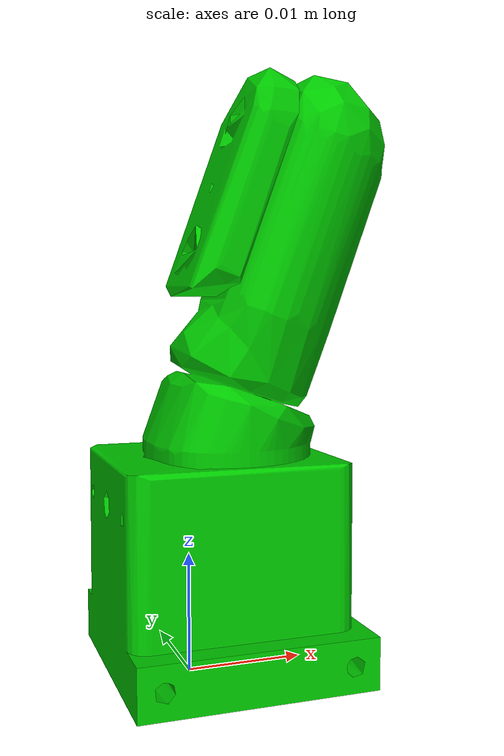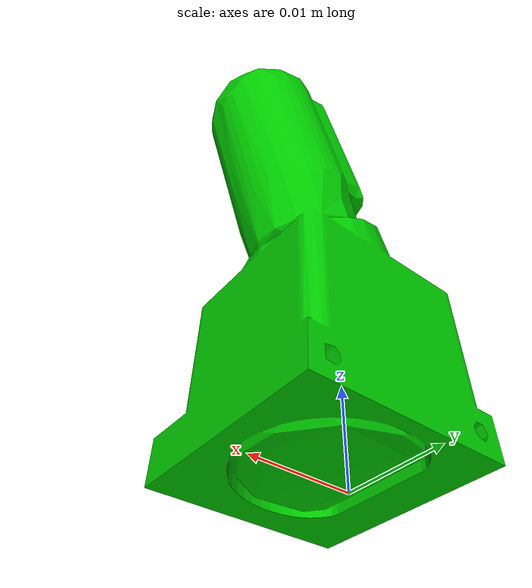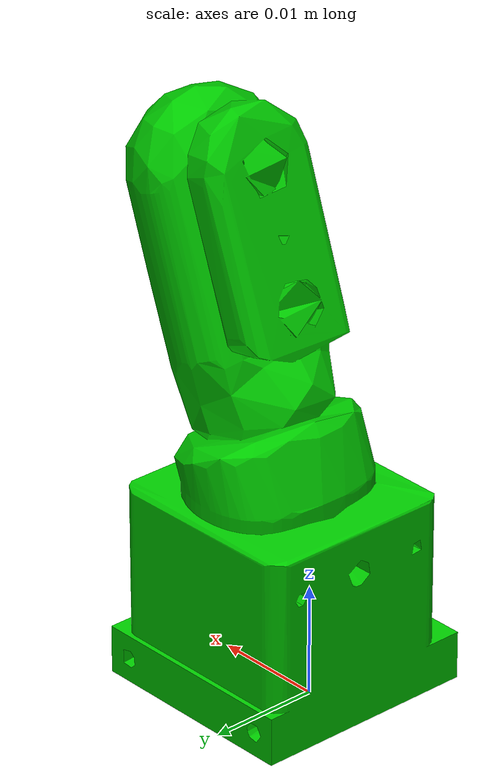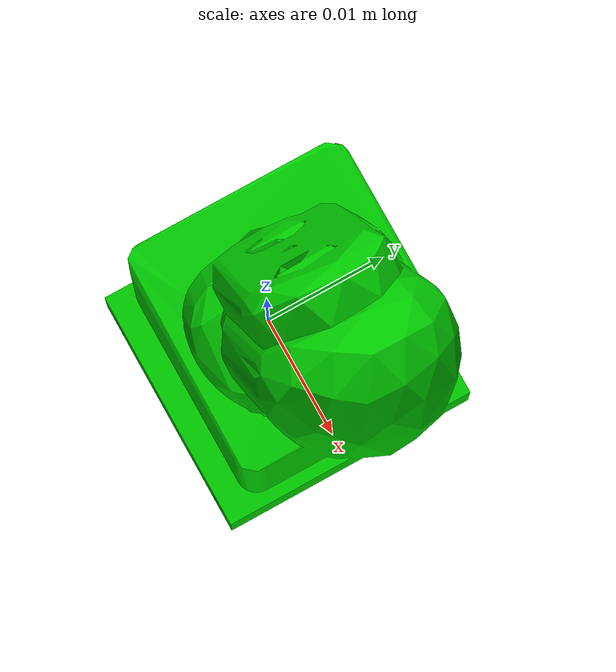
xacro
<robot xmlns:xacro="http://www.ros.org/wiki/xacro" name="fingertip">
<link name="middle_tip_dart">
</link>
<joint name="middle_tip_dart_urdf" type="fixed">
      <origin rpy="0.0 0.0 0.0" xyz="0.011 0.0 0.029"/>
      <parent link="middle_tip_dart"/>
      <child link="middle_tip"/>
    </joint>

<link name="middle_tip">
      <visual>
	<!--origin rpy="0.0 1.57 1.57" xyz="-0.015 -0.0  -0.04" /-->
      <origin rpy="0.0 1.57 1.57" xyz="-0.00277 0.0  -0.00545" />

	<!--origin rpy="0.1 0 1.57" xyz="0.0102 -0.01  -0.055" /-->
        <geometry>
            <mesh filename="package://ll4ma_robots_description/meshes/biotac/biotac_sensor.stl" />
        </geometry>
	        <material name="Green">
            <color rgba="0.0 0.8 .0 1" />
        </material>
    </visual>
    <collision>
      <geometry>
        <box size="0.01 0.01 0.025" />
      </geometry>
      <origin rpy="0 0.3 0" xyz="-0.0025 0 -0.009" />
    </collision>
    <inertial>
        <mass value="0.021" />
        <origin xyz="0 0 0" rpy="0 0 0" />
        <inertia ixx="9.68e-07" ixy="0" ixz="0" iyy="9.68e-07" iyz="0" izz="9.68e-07" />
    </inertial>
    </link>

    <link name="middle_biotac_origin"/>
    <joint name="middle_tip_bt" type="fixed">
      <origin rpy="${0.0 * pi} ${-0.38875 * pi} ${0.0 * pi}" xyz="0.0005 0.00155 0.0155"/>
      <parent link="middle_tip"/>
      <child link="middle_biotac_origin"/>
    </joint>

</robot>
